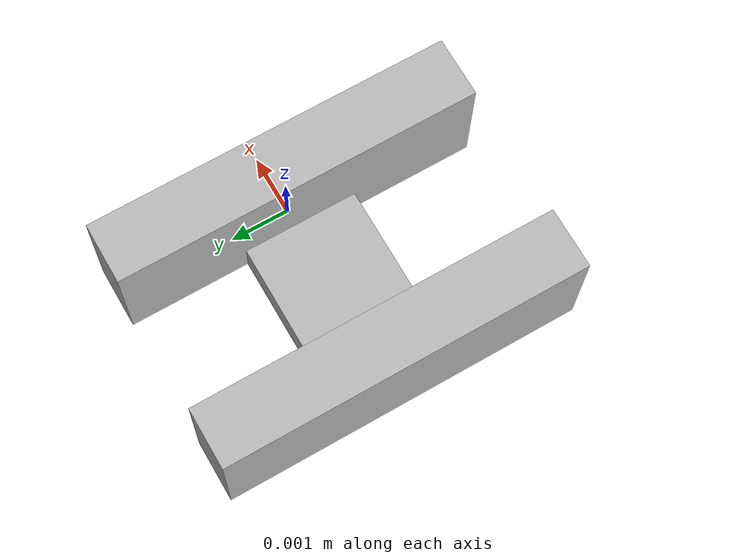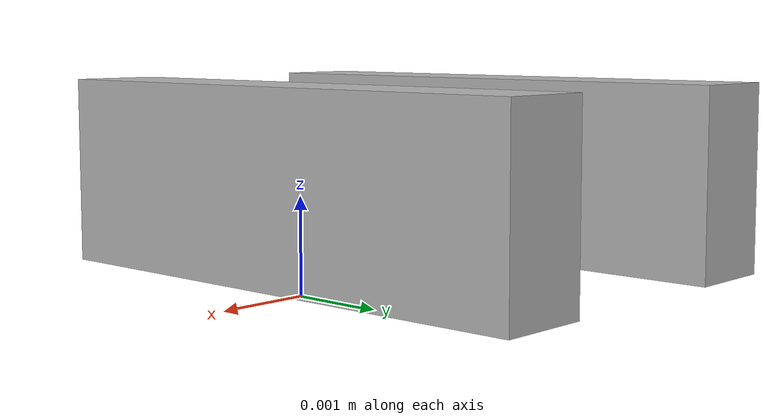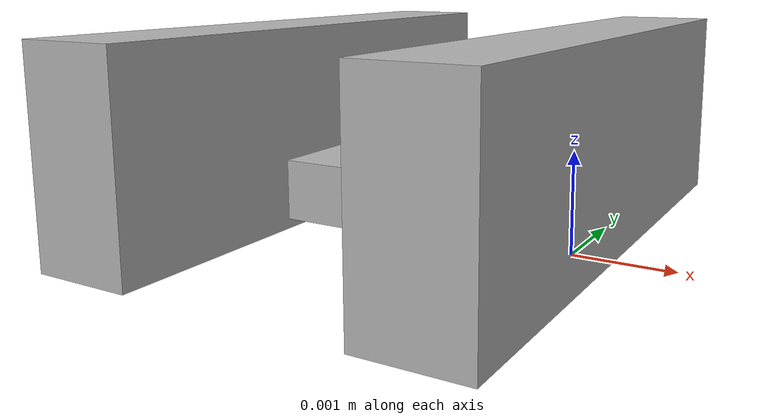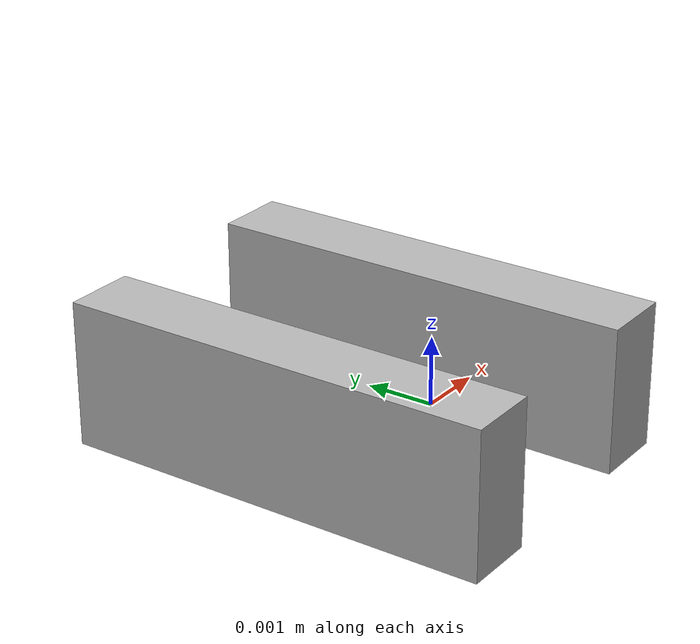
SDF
<?xml version='1.0'?>
<sdf version="1.4">
<model name="tether">
<link name="connect1">

   <pose>0 0 0.0011 0 0 0</pose>
      <inertial>
        <mass>0.00001</mass>
        <inertia>
          <ixx>0.0</ixx>
          <ixy>0.0</ixy>
          <ixz>0.0</ixz>
          <iyy>0.0</iyy>
          <iyz>0.0</iyz>
          <izz>0.0</izz>
        </inertia>
      </inertial>
      <collision name="collision">
        <geometry>
          <box>
            <size>0.001 0.006 0.002</size>
          </box>
        </geometry>
      </collision>
      <visual name="visual">
        <geometry>
          <box>
            <size>0.001 0.006 0.002</size>
          </box>
        </geometry>
      </visual>
    </link>

<link name="connect2">

   <pose>-0.0016 0.00005 0.0005 0 0 0</pose>
      <inertial>
        <mass>0.00001</mass>
        <inertia>
          <ixx>0.0</ixx>
          <ixy>0.0</ixy>
          <ixz>0.0</ixz>
          <iyy>0.0</iyy>
          <iyz>0.0</iyz>
          <izz>0.0</izz>
        </inertia>
      </inertial>
      <collision name="collision">
        <geometry>
          <box>
            <size>0.0021 0.0019 0.0006</size>
          </box>
        </geometry>
      </collision>
      <visual name="visual">
        <geometry>
          <box>
            <size>0.0021 0.0019 0.0006</size>
          </box>
        </geometry>
      </visual>
    </link>

<link name="connect3">

   <pose>-0.00315 0 0.0011 0 0 0</pose>
      <inertial>
        <mass>0.00001</mass>
        <inertia>
          <ixx>0.0</ixx>
          <ixy>0.0</ixy>
          <ixz>0.0</ixz>
          <iyy>0.0</iyy>
          <iyz>0.0</iyz>
          <izz>0.0</izz>
        </inertia>
      </inertial>
      <collision name="collision">
        <geometry>
          <box>
            <size>0.001 0.006 0.002</size>
          </box>
        </geometry>
      </collision>
      <visual name="visual">
        <geometry>
          <box>
            <size>0.001 0.006 0.002</size>
          </box>
        </geometry>
      </visual>
    </link>

    <joint name='connect1_joint' type='fixed'>
      <parent>connect1</parent>
      <child>connect2</child>
      <pose>0.00105 0 0 0 0 0</pose>
    </joint>

    <joint name='connect2_joint' type='fixed'>
      <parent>connect2</parent>
      <child>connect3</child>
      <pose>0.0005 0 -0.00025 0 0 0</pose>
    </joint>

  </model>
</sdf>
